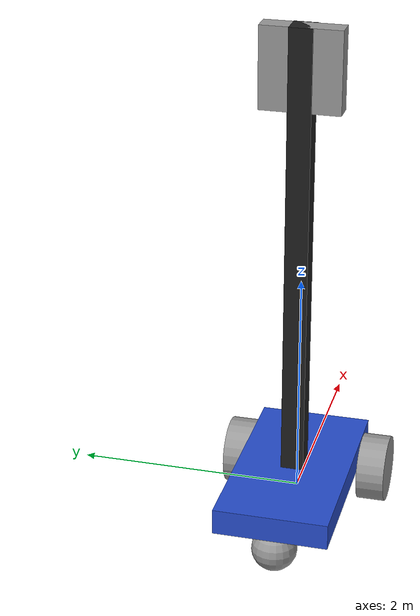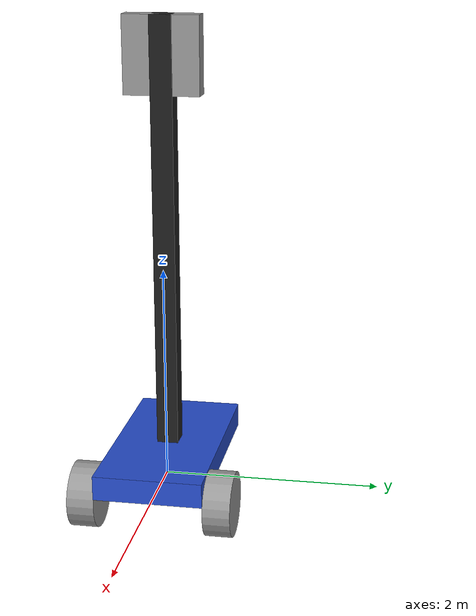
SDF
<?xml version='1.0'?>
<sdf version='1.6'>
  <model name='tutorial_cartV2'>
    <link name='link_0'>
      <pose frame=''>-0.138821 -0 0.175 0 -0 0</pose>
      <inertial>
        <mass>0.434487</mass>
        <inertia>
          <ixx>0.0380798</ixx>
          <ixy>0</ixy>
          <ixz>0</ixz>
          <iyy>0.134041</iyy>
          <iyz>0</iyz>
          <izz>0.168376</izz>
        </inertia>
        <pose frame=''>0 0 0.064136 0 -0 0</pose>
      </inertial>
      <self_collide>0</self_collide>
      <kinematic>0</kinematic>
      <visual name='visual'>
        <pose frame=''>0 0 0 0 -0 0</pose>
        <geometry>
          <box>
            <size>1.91057 1 0.227397</size>
          </box>
        </geometry>
        <material>
          <lighting>1</lighting>
          <script>
            <uri>file://media/materials/scripts/gazebo.material</uri>
            <name>Gazebo/Blue</name>
          </script>
          <ambient>0 0 0 1</ambient>
          <diffuse>0 0 0 1</diffuse>
          <specular>0 0 0 0</specular>
          <emissive>0 0 0 1</emissive>
          <shader type='vertex'>
            <normal_map>__default__</normal_map>
          </shader>
        </material>
        <cast_shadows>1</cast_shadows>
        <transparency>0</transparency>
      </visual>
      <collision name='collision'>
        <laser_retro>0</laser_retro>
        <max_contacts>10</max_contacts>
        <pose frame=''>0 0 0 0 -0 0</pose>
        <geometry>
          <box>
            <size>1.91057 1 0.227397</size>
          </box>
        </geometry>
        <surface>
          <friction>
            <ode>
              <mu>1</mu>
              <mu2>1</mu2>
              <fdir1>0 0 0</fdir1>
              <slip1>0</slip1>
              <slip2>0</slip2>
            </ode>
            <torsional>
              <coefficient>1</coefficient>
              <patch_radius>0</patch_radius>
              <surface_radius>0</surface_radius>
              <use_patch_radius>1</use_patch_radius>
              <ode>
                <slip>0</slip>
              </ode>
            </torsional>
          </friction>
          <bounce>
            <restitution_coefficient>0</restitution_coefficient>
            <threshold>1e+06</threshold>
          </bounce>
          <contact>
            <collide_without_contact>0</collide_without_contact>
            <collide_without_contact_bitmask>1</collide_without_contact_bitmask>
            <collide_bitmask>1</collide_bitmask>
            <ode>
              <soft_cfm>0</soft_cfm>
              <soft_erp>0.2</soft_erp>
              <kp>1e+13</kp>
              <kd>1</kd>
              <max_vel>0.01</max_vel>
              <min_depth>0</min_depth>
            </ode>
            <bullet>
              <split_impulse>1</split_impulse>
              <split_impulse_penetration_threshold>-0.01</split_impulse_penetration_threshold>
              <soft_cfm>0</soft_cfm>
              <soft_erp>0.2</soft_erp>
              <kp>1e+13</kp>
              <kd>1</kd>
            </bullet>
          </contact>
        </surface>
      </collision>
    </link>
    <link name='link_0_0'>
      <pose frame=''>-0.138799 -0 3.93614 -3e-06 7e-06 -0.004733</pose>
      <inertial>
        <mass>0.0875951</mass>
        <inertia>
          <ixx>0.00713981</ixx>
          <ixy>0</ixy>
          <ixz>0</ixz>
          <iyy>0.00386364</iyy>
          <iyz>0</iyz>
          <izz>0.00374466</izz>
        </inertia>
        <pose frame=''>0 0 0 0 -0 0</pose>
      </inertial>
      <self_collide>0</self_collide>
      <kinematic>0</kinematic>
      <visual name='visual'>
        <pose frame=''>0 0 0 0 -0 0</pose>
        <geometry>
          <box>
            <size>0.179139 0.69344 0.70512</size>
          </box>
        </geometry>
        <material>
          <lighting>1</lighting>
          <script>
            <uri>file://media/materials/scripts/gazebo.material</uri>
            <name>Gazebo/Grey</name>
          </script>
          <ambient>0.3 0.3 0.3 1</ambient>
          <diffuse>0.7 0.7 0.7 1</diffuse>
          <specular>0.01 0.01 0.01 1</specular>
          <emissive>0 0 0 1</emissive>
        </material>
        <cast_shadows>1</cast_shadows>
        <transparency>0</transparency>
      </visual>
      <collision name='collision'>
        <laser_retro>0</laser_retro>
        <max_contacts>10</max_contacts>
        <pose frame=''>0 0 0 0 -0 0</pose>
        <geometry>
          <box>
            <size>0.179139 0.69344 0.70512</size>
          </box>
        </geometry>
        <surface>
          <friction>
            <ode>
              <mu>1</mu>
              <mu2>1</mu2>
              <fdir1>0 0 0</fdir1>
              <slip1>0</slip1>
              <slip2>0</slip2>
            </ode>
            <torsional>
              <coefficient>1</coefficient>
              <patch_radius>0</patch_radius>
              <surface_radius>0</surface_radius>
              <use_patch_radius>1</use_patch_radius>
              <ode>
                <slip>0</slip>
              </ode>
            </torsional>
          </friction>
          <bounce>
            <restitution_coefficient>0</restitution_coefficient>
            <threshold>1e+06</threshold>
          </bounce>
          <contact>
            <collide_without_contact>0</collide_without_contact>
            <collide_without_contact_bitmask>1</collide_without_contact_bitmask>
            <collide_bitmask>1</collide_bitmask>
            <ode>
              <soft_cfm>0</soft_cfm>
              <soft_erp>0.2</soft_erp>
              <kp>1e+13</kp>
              <kd>1</kd>
              <max_vel>0.01</max_vel>
              <min_depth>0</min_depth>
            </ode>
            <bullet>
              <split_impulse>1</split_impulse>
              <split_impulse_penetration_threshold>-0.01</split_impulse_penetration_threshold>
              <soft_cfm>0</soft_cfm>
              <soft_erp>0.2</soft_erp>
              <kp>1e+13</kp>
              <kd>1</kd>
            </bullet>
          </contact>
        </surface>
      </collision>
    </link>
    <link name='link_1'>
      <pose frame=''>0.516463 -0.625029 -0.025 1.5707 -0 0</pose>
      <inertial>
        <mass>1</mass>
        <inertia>
          <ixx>0.145833</ixx>
          <ixy>0</ixy>
          <ixz>0</ixz>
          <iyy>0.145833</iyy>
          <iyz>0</iyz>
          <izz>0.125</izz>
        </inertia>
        <pose frame=''>0 0 0 0 -0 0</pose>
      </inertial>
      <self_collide>0</self_collide>
      <kinematic>0</kinematic>
      <visual name='visual'>
        <pose frame=''>0 0 0 0 -0 0</pose>
        <geometry>
          <cylinder>
            <radius>0.3</radius>
            <length>0.25</length>
          </cylinder>
        </geometry>
        <material>
          <lighting>1</lighting>
          <script>
            <uri>file://media/materials/scripts/gazebo.material</uri>
            <name>Gazebo/Grey</name>
          </script>
          <ambient>0.3 0.3 0.3 1</ambient>
          <diffuse>0.7 0.7 0.7 1</diffuse>
          <specular>0.01 0.01 0.01 1</specular>
          <emissive>0 0 0 1</emissive>
          <shader type='vertex'>
            <normal_map>__default__</normal_map>
          </shader>
        </material>
        <cast_shadows>1</cast_shadows>
        <transparency>0</transparency>
      </visual>
      <collision name='collision'>
        <laser_retro>0</laser_retro>
        <max_contacts>10</max_contacts>
        <pose frame=''>0 0 0 0 -0 0</pose>
        <geometry>
          <cylinder>
            <radius>0.3</radius>
            <length>0.25</length>
          </cylinder>
        </geometry>
        <surface>
          <friction>
            <ode>
              <mu>1</mu>
              <mu2>1</mu2>
              <fdir1>0 0 0</fdir1>
              <slip1>0</slip1>
              <slip2>0</slip2>
            </ode>
            <torsional>
              <coefficient>1</coefficient>
              <patch_radius>0</patch_radius>
              <surface_radius>0</surface_radius>
              <use_patch_radius>1</use_patch_radius>
              <ode>
                <slip>0</slip>
              </ode>
            </torsional>
          </friction>
          <bounce>
            <restitution_coefficient>0</restitution_coefficient>
            <threshold>1e+06</threshold>
          </bounce>
          <contact>
            <collide_without_contact>0</collide_without_contact>
            <collide_without_contact_bitmask>1</collide_without_contact_bitmask>
            <collide_bitmask>1</collide_bitmask>
            <ode>
              <soft_cfm>0</soft_cfm>
              <soft_erp>0.2</soft_erp>
              <kp>1e+13</kp>
              <kd>1</kd>
              <max_vel>0.01</max_vel>
              <min_depth>0</min_depth>
            </ode>
            <bullet>
              <split_impulse>1</split_impulse>
              <split_impulse_penetration_threshold>-0.01</split_impulse_penetration_threshold>
              <soft_cfm>0</soft_cfm>
              <soft_erp>0.2</soft_erp>
              <kp>1e+13</kp>
              <kd>1</kd>
            </bullet>
          </contact>
        </surface>
      </collision>
    </link>
    <link name='link_1_clone'>
      <pose frame=''>0.516463 0.625029 -0.025 1.5707 -0 0</pose>
      <inertial>
        <mass>1</mass>
        <inertia>
          <ixx>0.145833</ixx>
          <ixy>0</ixy>
          <ixz>0</ixz>
          <iyy>0.145833</iyy>
          <iyz>0</iyz>
          <izz>0.125</izz>
        </inertia>
        <pose frame=''>0 0 0 0 -0 0</pose>
      </inertial>
      <self_collide>0</self_collide>
      <kinematic>0</kinematic>
      <visual name='visual'>
        <pose frame=''>0 0 0 0 -0 0</pose>
        <geometry>
          <cylinder>
            <radius>0.3</radius>
            <length>0.25</length>
          </cylinder>
        </geometry>
        <material>
          <lighting>1</lighting>
          <script>
            <uri>file://media/materials/scripts/gazebo.material</uri>
            <name>Gazebo/Grey</name>
          </script>
          <ambient>0.3 0.3 0.3 1</ambient>
          <diffuse>0.7 0.7 0.7 1</diffuse>
          <specular>0.01 0.01 0.01 1</specular>
          <emissive>0 0 0 1</emissive>
          <shader type='vertex'>
            <normal_map>__default__</normal_map>
          </shader>
        </material>
        <cast_shadows>1</cast_shadows>
        <transparency>0</transparency>
      </visual>
      <collision name='collision'>
        <laser_retro>0</laser_retro>
        <max_contacts>10</max_contacts>
        <pose frame=''>0 0 0 0 -0 0</pose>
        <geometry>
          <cylinder>
            <radius>0.3</radius>
            <length>0.25</length>
          </cylinder>
        </geometry>
        <surface>
          <friction>
            <ode>
              <mu>1</mu>
              <mu2>1</mu2>
              <fdir1>0 0 0</fdir1>
              <slip1>0</slip1>
              <slip2>0</slip2>
            </ode>
            <torsional>
              <coefficient>1</coefficient>
              <patch_radius>0</patch_radius>
              <surface_radius>0</surface_radius>
              <use_patch_radius>1</use_patch_radius>
              <ode>
                <slip>0</slip>
              </ode>
            </torsional>
          </friction>
          <bounce>
            <restitution_coefficient>0</restitution_coefficient>
            <threshold>1e+06</threshold>
          </bounce>
          <contact>
            <collide_without_contact>0</collide_without_contact>
            <collide_without_contact_bitmask>1</collide_without_contact_bitmask>
            <collide_bitmask>1</collide_bitmask>
            <ode>
              <soft_cfm>0</soft_cfm>
              <soft_erp>0.2</soft_erp>
              <kp>1e+13</kp>
              <kd>1</kd>
              <max_vel>0.01</max_vel>
              <min_depth>0</min_depth>
            </ode>
            <bullet>
              <split_impulse>1</split_impulse>
              <split_impulse_penetration_threshold>-0.01</split_impulse_penetration_threshold>
              <soft_cfm>0</soft_cfm>
              <soft_erp>0.2</soft_erp>
              <kp>1e+13</kp>
              <kd>1</kd>
            </bullet>
          </contact>
        </surface>
      </collision>
    </link>
    <link name='link_2'>
      <pose frame=''>-0.894105 0 -0.125 0 -0 0</pose>
      <inertial>
        <mass>1</mass>
        <inertia>
          <ixx>0.1</ixx>
          <ixy>0</ixy>
          <ixz>0</ixz>
          <iyy>0.1</iyy>
          <iyz>0</iyz>
          <izz>0.1</izz>
        </inertia>
        <pose frame=''>0 0 0 0 -0 0</pose>
      </inertial>
      <self_collide>0</self_collide>
      <kinematic>0</kinematic>
      <visual name='visual'>
        <pose frame=''>0 0 0 0 -0 0</pose>
        <geometry>
          <sphere>
            <radius>0.2</radius>
          </sphere>
        </geometry>
        <material>
          <lighting>1</lighting>
          <script>
            <uri>file://media/materials/scripts/gazebo.material</uri>
            <name>Gazebo/Grey</name>
          </script>
          <ambient>0.3 0.3 0.3 1</ambient>
          <diffuse>0.7 0.7 0.7 1</diffuse>
          <specular>0.01 0.01 0.01 1</specular>
          <emissive>0 0 0 1</emissive>
          <shader type='vertex'>
            <normal_map>__default__</normal_map>
          </shader>
        </material>
        <cast_shadows>1</cast_shadows>
        <transparency>0</transparency>
      </visual>
      <collision name='collision'>
        <laser_retro>0</laser_retro>
        <max_contacts>10</max_contacts>
        <pose frame=''>0 0 0 0 -0 0</pose>
        <geometry>
          <sphere>
            <radius>0.2</radius>
          </sphere>
        </geometry>
        <surface>
          <friction>
            <ode>
              <mu>1</mu>
              <mu2>1</mu2>
              <fdir1>0 0 0</fdir1>
              <slip1>0</slip1>
              <slip2>0</slip2>
            </ode>
            <torsional>
              <coefficient>1</coefficient>
              <patch_radius>0</patch_radius>
              <surface_radius>0</surface_radius>
              <use_patch_radius>1</use_patch_radius>
              <ode>
                <slip>0</slip>
              </ode>
            </torsional>
          </friction>
          <bounce>
            <restitution_coefficient>0</restitution_coefficient>
            <threshold>1e+06</threshold>
          </bounce>
          <contact>
            <collide_without_contact>0</collide_without_contact>
            <collide_without_contact_bitmask>1</collide_without_contact_bitmask>
            <collide_bitmask>1</collide_bitmask>
            <ode>
              <soft_cfm>0</soft_cfm>
              <soft_erp>0.2</soft_erp>
              <kp>1e+13</kp>
              <kd>1</kd>
              <max_vel>0.01</max_vel>
              <min_depth>0</min_depth>
            </ode>
            <bullet>
              <split_impulse>1</split_impulse>
              <split_impulse_penetration_threshold>-0.01</split_impulse_penetration_threshold>
              <soft_cfm>0</soft_cfm>
              <soft_erp>0.2</soft_erp>
              <kp>1e+13</kp>
              <kd>1</kd>
            </bullet>
          </contact>
        </surface>
      </collision>
    </link>
    <link name='link_3'>
      <pose frame=''>-0.138809 -0 2.2887 0 9e-06 0.000451</pose>
      <inertial>
        <mass>1</mass>
        <inertia>
          <ixx>0.166667</ixx>
          <ixy>0</ixy>
          <ixz>0</ixz>
          <iyy>0.166667</iyy>
          <iyz>0</iyz>
          <izz>0.166667</izz>
        </inertia>
        <pose frame=''>0 0 0 0 -0 0</pose>
      </inertial>
      <self_collide>0</self_collide>
      <kinematic>0</kinematic>
      <gravity>1</gravity>
      <visual name='visual'>
        <pose frame=''>0 0 0 0 -0 0</pose>
        <geometry>
          <box>
            <size>0.2 0.2 4</size>
          </box>
        </geometry>
        <material>
          <lighting>1</lighting>
          <script>
            <uri>file://media/materials/scripts/gazebo.material</uri>
            <name>Gazebo/Black</name>
          </script>
          <ambient>0.3 0.3 0.3 1</ambient>
          <diffuse>0.7 0.7 0.7 1</diffuse>
          <specular>0.01 0.01 0.01 1</specular>
          <emissive>0 0 0 1</emissive>
          <shader type='vertex'>
            <normal_map>__default__</normal_map>
          </shader>
        </material>
        <cast_shadows>1</cast_shadows>
        <transparency>0</transparency>
      </visual>
      <collision name='collision'>
        <laser_retro>0</laser_retro>
        <max_contacts>10</max_contacts>
        <pose frame=''>0 0 0 0 -0 0</pose>
        <geometry>
          <box>
            <size>0.2 0.2 4</size>
          </box>
        </geometry>
        <surface>
          <friction>
            <ode>
              <mu>1</mu>
              <mu2>1</mu2>
              <fdir1>0 0 0</fdir1>
              <slip1>0</slip1>
              <slip2>0</slip2>
            </ode>
            <torsional>
              <coefficient>1</coefficient>
              <patch_radius>0</patch_radius>
              <surface_radius>0</surface_radius>
              <use_patch_radius>1</use_patch_radius>
              <ode>
                <slip>0</slip>
              </ode>
            </torsional>
          </friction>
          <bounce>
            <restitution_coefficient>0</restitution_coefficient>
            <threshold>1e+06</threshold>
          </bounce>
          <contact>
            <collide_without_contact>0</collide_without_contact>
            <collide_without_contact_bitmask>1</collide_without_contact_bitmask>
            <collide_bitmask>1</collide_bitmask>
            <ode>
              <soft_cfm>0</soft_cfm>
              <soft_erp>0.2</soft_erp>
              <kp>1e+13</kp>
              <kd>1</kd>
              <max_vel>0.01</max_vel>
              <min_depth>0</min_depth>
            </ode>
            <bullet>
              <split_impulse>1</split_impulse>
              <split_impulse_penetration_threshold>-0.01</split_impulse_penetration_threshold>
              <soft_cfm>0</soft_cfm>
              <soft_erp>0.2</soft_erp>
              <kp>1e+13</kp>
              <kd>1</kd>
            </bullet>
          </contact>
        </surface>
      </collision>
    </link>
    <joint name='link_0_JOINT_0_0' type='fixed'>
      <parent>link_0</parent>
      <child>link_3</child>
      <pose frame=''>0 0 0 0 -0 0</pose>
      <physics>
        <ode>
          <limit>
            <cfm>0</cfm>
            <erp>0.2</erp>
          </limit>
          <suspension>
            <cfm>0</cfm>
            <erp>0.2</erp>
          </suspension>
        </ode>
      </physics>
    </joint>
    <joint name='link_0_JOINT_0' type='revolute'>
      <parent>link_0</parent>
      <child>link_1_clone</child>
      <pose frame=''>0 0 0 0 -0 0</pose>
      <axis>
        <xyz>0 0 1</xyz>
        <use_parent_model_frame>0</use_parent_model_frame>
        <limit>
          <lower>-1.79769e+308</lower>
          <upper>1.79769e+308</upper>
          <effort>-1</effort>
          <velocity>-1</velocity>
        </limit>
        <dynamics>
          <spring_reference>0</spring_reference>
          <spring_stiffness>0</spring_stiffness>
          <damping>0</damping>
          <friction>0</friction>
        </dynamics>
      </axis>
      <physics>
        <ode>
          <limit>
            <cfm>0</cfm>
            <erp>0.2</erp>
          </limit>
          <suspension>
            <cfm>0</cfm>
            <erp>0.2</erp>
          </suspension>
        </ode>
      </physics>
    </joint>
    <joint name='link_0_JOINT_1' type='revolute'>
      <parent>link_0</parent>
      <child>link_1</child>
      <pose frame=''>0 0 0 0 -0 0</pose>
      <axis>
        <xyz>0 0 1</xyz>
        <use_parent_model_frame>0</use_parent_model_frame>
        <limit>
          <lower>-1.79769e+308</lower>
          <upper>1.79769e+308</upper>
          <effort>-1</effort>
          <velocity>-1</velocity>
        </limit>
        <dynamics>
          <spring_reference>0</spring_reference>
          <spring_stiffness>0</spring_stiffness>
          <damping>0</damping>
          <friction>0</friction>
        </dynamics>
      </axis>
      <physics>
        <ode>
          <limit>
            <cfm>0</cfm>
            <erp>0.2</erp>
          </limit>
          <suspension>
            <cfm>0</cfm>
            <erp>0.2</erp>
          </suspension>
        </ode>
      </physics>
    </joint>
    <joint name='link_0_JOINT_2' type='ball'>
      <parent>link_0</parent>
      <child>link_2</child>
      <pose frame=''>0 0 0 0 -0 0</pose>
      <physics>
        <ode>
          <limit>
            <cfm>0</cfm>
            <erp>0.2</erp>
          </limit>
          <suspension>
            <cfm>0</cfm>
            <erp>0.2</erp>
          </suspension>
        </ode>
      </physics>
    </joint>
    <joint name='link_3_JOINT_1' type='revolute'>
      <parent>link_3</parent>
      <child>link_0_0</child>
      <pose frame=''>0 0 0 0 -0 0</pose>
      <axis>
        <xyz>1 0 0</xyz>
        <use_parent_model_frame>0</use_parent_model_frame>
        <limit>
          <lower>-1.79769e+308</lower>
          <upper>1.79769e+308</upper>
          <effort>-1</effort>
          <velocity>-1</velocity>
        </limit>
        <dynamics>
          <spring_reference>0</spring_reference>
          <spring_stiffness>0</spring_stiffness>
          <damping>0</damping>
        </dynamics>
      </axis>
      <physics>
        <ode>
          <limit>
            <cfm>0</cfm>
            <erp>0.2</erp>
          </limit>
          <suspension>
            <cfm>0</cfm>
            <erp>0.2</erp>
          </suspension>
        </ode>
      </physics>
    </joint>
    <static>0</static>
    <allow_auto_disable>1</allow_auto_disable>
  </model>
</sdf>
